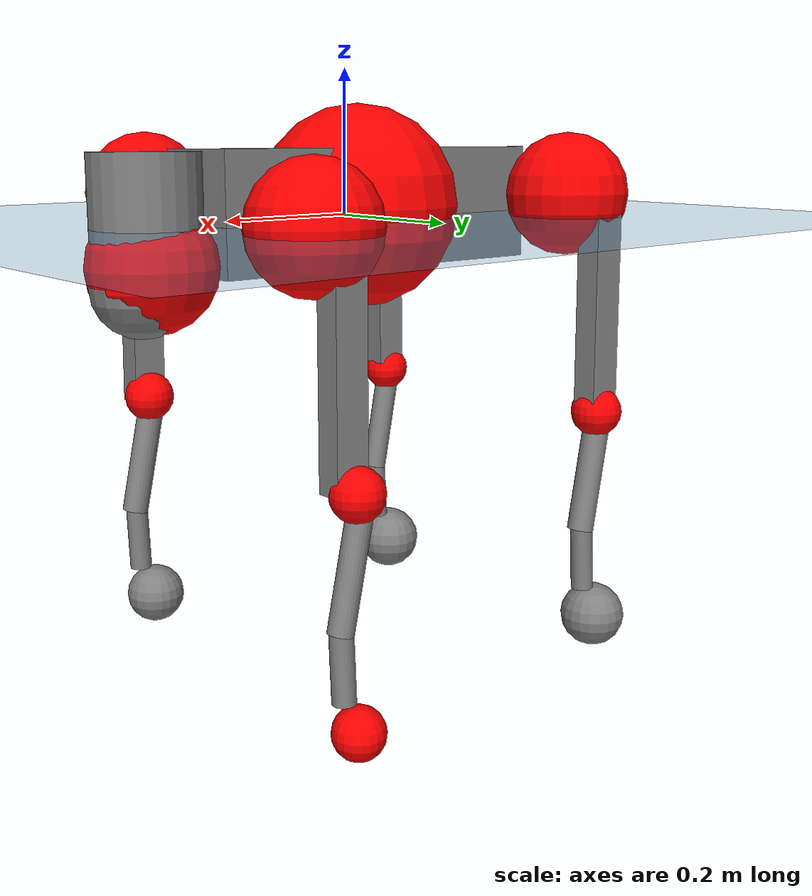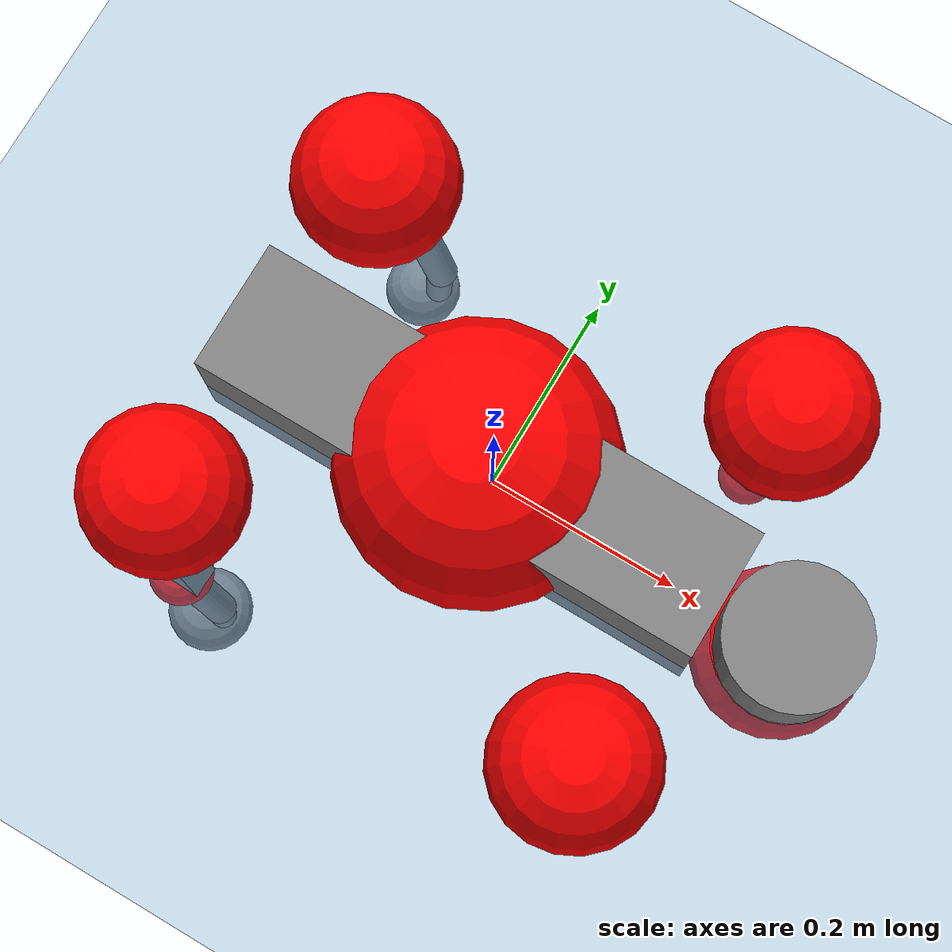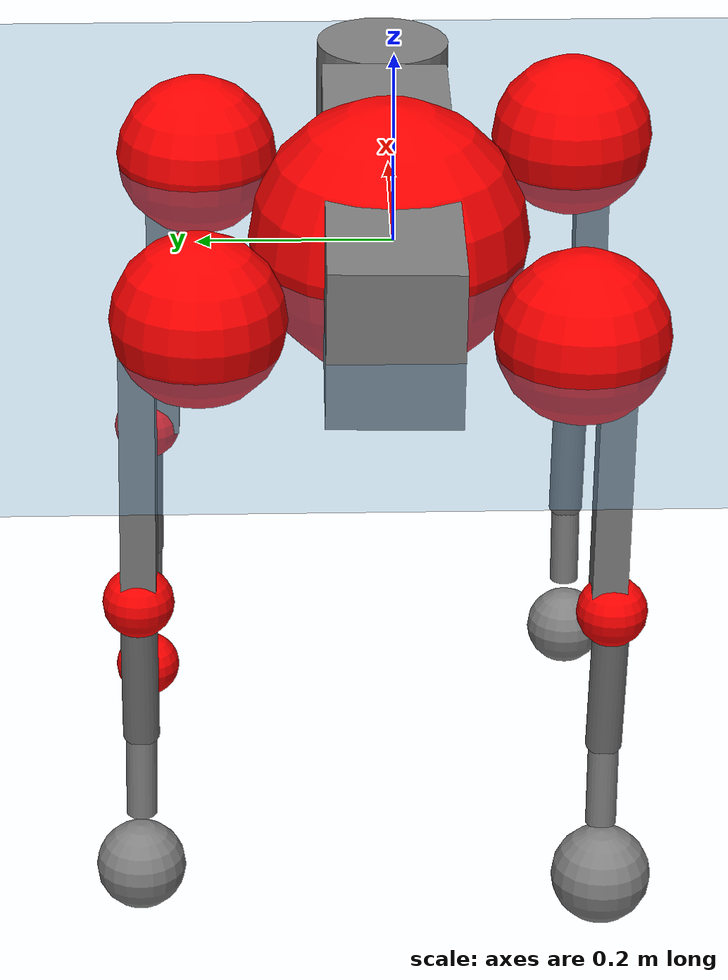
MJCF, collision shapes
<mujoco model="go2">
  <compiler angle="radian" assetdir="assets" balanceinertia="true" inertiafromgeom="false"/>

  <option timestep="0.005" density="1.2" viscosity="2e-05"/>

  <size nkey="1"/>

  <visual>
    <quality shadowsize="8192"/>
    <map shadowclip="0.5"/>
  </visual>

  <default>
    <default class="/">
      <geom contype="0" conaffinity="0" group="1" solref="-1000 -80"/>
      <site size="0.01 0.005 0.005" group="5"/>
      <general forcelimited="true" biastype="affine" gainprm="20" biasprm="0 -20 -0.5"/>
      <default class="go2">
        <joint armature="0.01" damping="0.01" frictionloss="0.2"/>
        <geom condim="1" margin="0.001"/>
        <default class="visual">
          <geom type="mesh" group="2"/>
        </default>
        <default class="collision">
          <geom group="3"/>
          <default class="foot">
            <geom size="0.022 0 0" condim="6" priority="1" friction="0.8 0.02 0.01" solimp="0.015 1 0.022"/>
          </default>
        </default>
        <default class="reward_collision_sphere">
          <geom group="5" rgba="1 0 0 1"/>
        </default>
      </default>
    </default>
  </default>

  <asset>
    <texture type="skybox" colorspace="auto" name="//unnamed_texture_0" builtin="gradient" rgb1="0.95 0.95 0.95" rgb2="0.95 0.95 0.95" width="100" height="600"/>
    <texture type="2d" colorspace="auto" name="texplane" builtin="checker" rgb1="0.345 0.575 0.748" rgb2="0.345 0.575 0.748" markrgb="1 1 1" width="512" height="512"/>
    <material name="MatPlane" class="/" texture="texplane" texuniform="true" texrepeat="2 2" specular="0.9"/>
    <material name="metal" class="/" rgba="0.9 0.95 0.95 1"/>
    <material name="black" class="/" rgba="0 0 0 1"/>
    <material name="white" class="/"/>
    <material name="gray" class="/" rgba="0.671705 0.692426 0.77427 1"/>
    <mesh name="base_0" class="/" file="base_0.obj"/>
    <mesh name="base_1" class="/" file="base_1.obj"/>
    <mesh name="base_2" class="/" file="base_2.obj"/>
    <mesh name="base_3" class="/" file="base_3.obj"/>
    <mesh name="base_4" class="/" file="base_4.obj"/>
    <mesh name="hip_0" class="/" file="hip_0.obj"/>
    <mesh name="hip_1" class="/" file="hip_1.obj"/>
    <mesh name="thigh_0" class="/" file="thigh_0.obj"/>
    <mesh name="thigh_1" class="/" file="thigh_1.obj"/>
    <mesh name="thigh_mirror_0" class="/" file="thigh_mirror_0.obj"/>
    <mesh name="thigh_mirror_1" class="/" file="thigh_mirror_1.obj"/>
    <mesh name="calf_0" class="/" file="calf_0.obj"/>
    <mesh name="calf_1" class="/" file="calf_1.obj"/>
    <mesh name="calf_mirror_0" class="/" file="calf_mirror_0.obj"/>
    <mesh name="calf_mirror_1" class="/" file="calf_mirror_1.obj"/>
    <mesh name="foot" class="/" file="foot.obj"/>
  </asset>

  <worldbody>
    <geom name="floor" class="/" size="100 100 0.125" type="plane" group="0" material="MatPlane"/>
    <light name="toplight_shadow" class="/" pos="0 0 5" dir="0.0990148 0.0990148 -0.990148" type="directional" ambient="0.04 0.04 0.04" diffuse="0.55 0.55 0.55" specular="0.12 0.12 0.12"/>
    <light name="toplight_fill" class="/" pos="0 0 5" dir="0.0990148 0.0990148 -0.990148" type="directional" castshadow="false" ambient="0.04 0.04 0.04" diffuse="0.3 0.3 0.3" specular="0.08 0.08 0.08"/>
    <body name="trunk" childclass="go2" pos="-0.0194292 0.00513848 0.0117209" quat="0.99996 0.00828057 -0.00312639 -0.00154999">
      <inertial pos="0.0440507 -0.0113998 -0.000862321" quat="0.0330668 0.718798 -0.0139743 0.694292" mass="21.5823" diaginertia="0.231495 0.988571 0.114552"/>
      <joint name="//unnamed_joint_0" type="free" armature="0" damping="0" frictionloss="0"/>
      <geom name="//unnamed_geom_1" class="visual" material="black" mesh="base_0"/>
      <geom name="//unnamed_geom_2" class="visual" material="black" mesh="base_1"/>
      <geom name="//unnamed_geom_3" class="visual" material="black" mesh="base_2"/>
      <geom name="//unnamed_geom_4" class="visual" material="white" mesh="base_3"/>
      <geom name="//unnamed_geom_5" class="visual" material="gray" mesh="base_4"/>
      <geom name="trunk_1" class="collision" size="0.268155 0.0666467 0.081259" type="box"/>
      <geom name="trunk_2" class="collision" size="0.0712799 0.0641519" pos="0.342044 0 0.014411" type="cylinder"/>
      <geom name="trunk_3" class="collision" size="0.0670031" pos="0.351645 0 -0.0864658"/>
      <geom name="//unnamed_geom_9" class="reward_collision_sphere" size="0.14256"/>
      <geom name="//unnamed_geom_10" class="reward_collision_sphere" size="0.0855358" pos="0.336043 0 -0.0648494"/>
      <site name="imu" pos="-0.00364267 -0.0632221 -0.0266397" size="0.014256"/>
      <camera name="track" pos="0 -3.27108 0" quat="0.707107 0.707107 0 0" mode="trackcom"/>
      <camera name="ego_camera" pos="0.374448 0 0.0648494" quat="-0.5 -0.5 0.5 0.5"/>
      <body name="FL_hip" pos="0.23263 0.0850867 -0.0109431" quat="0.999984 0.00460429 -0.00122844 -0.00320308">
        <inertial pos="-0.014464 0.018136 0.00633727" quat="0.513788 0.476059 0.509124 0.500182" mass="2.02681" diaginertia="0.0014976 0.00531267 0.00294291"/>
        <joint name="FL_hip_joint" pos="0 0 0" axis="0.9954 0.0068195 0.0955667" stiffness="0.0520747" range="-1.42584 1.16785" armature="0.0157849" damping="0" frictionloss="0.254481"/>
        <geom name="//unnamed_geom_11" class="visual" material="metal" mesh="hip_0"/>
        <geom name="//unnamed_geom_12" class="visual" material="gray" mesh="hip_1"/>
        <geom name="//unnamed_geom_13" class="collision" size="0.0655775 0.0285119" pos="0 0.130843 0" quat="0.707107 0.707107 0 0" type="cylinder"/>
        <geom name="//unnamed_geom_14" class="reward_collision_sphere" size="0.0855358" pos="0 0.114488 0"/>
        <body name="FL_thigh" pos="-0.0120592 0.150719 -0.0128238" quat="0.999965 -0.00177946 -0.000417641 0.00810566">
          <inertial pos="-0.0192239 -0.0226696 -0.0293259" quat="0.828517 0.0879954 -0.01866 0.552692" mass="4.20305" diaginertia="0.0149494 0.0758412 0.00487371"/>
          <joint name="FL_thigh_joint" pos="0 0 0" axis="-0.00236922 0.998778 0.0493693" stiffness="0.0985898" range="-1.79906 3.54167" armature="0.022475" damping="0" frictionloss="0.427894"/>
          <geom name="//unnamed_geom_15" class="visual" material="metal" mesh="thigh_0"/>
          <geom name="//unnamed_geom_16" class="visual" material="gray" mesh="thigh_1"/>
          <geom name="//unnamed_geom_17" class="collision" size="0.151826 0.0174636 0.0242352" pos="0 0 -0.153477" quat="0.707107 0 0.707107 0" type="box"/>
          <body name="FL_calf" pos="-0.00615754 0.017925 -0.30402" quat="0.999977 0.00200118 -0.00585739 0.00282338">
            <inertial pos="0.0237128 0.00177126 -0.217977" quat="0.740951 -0.0274202 -0.00385758 0.670988" mass="0.654957" diaginertia="0.00325324 0.0106642 0.000219696"/>
            <joint name="FL_calf_joint" pos="0 0 0" axis="-0.00618919 0.998736 0.0498824" range="-2.36686 -0.934304" armature="0.00612722" damping="0.0985443" frictionloss="0.108673"/>
            <geom name="//unnamed_geom_18" class="visual" material="gray" mesh="calf_0"/>
            <geom name="//unnamed_geom_19" class="visual" material="black" mesh="calf_1"/>
            <geom name="FL_calf0" class="collision" size="0.0171072 0.0855358" pos="0.00960122 0 -0.0864658" quat="0.994493 0 -0.104807 0" type="cylinder"/>
            <geom name="//unnamed_geom_21" class="collision" size="0.0156816 0.0463319" pos="0.0240031 0 -0.213282" quat="0.999688 0 0.0249974 0" type="cylinder"/>
            <geom name="//unnamed_geom_22" class="visual" pos="0 0 -0.306954" quat="1 0 0 0" material="black" mesh="foot"/>
            <geom name="FL_foot" class="foot" size="0.0272005" pos="-0.00240031 0 -0.306954"/>
            <geom name="//unnamed_geom_24" class="reward_collision_sphere" size="0.0356399"/>
            <geom name="//unnamed_geom_25" class="reward_collision_sphere" size="0.0356399" pos="-0.00240031 0 -0.306954"/>
            <site name="FL_foot" class="foot" pos="-0.00240031 0 -0.306954" size="0.014256"/>
          </body>
        </body>
      </body>
      <body name="FR_hip" pos="0.225712 -0.0851917 0.0180816" quat="0.99997 -0.00631283 -0.00384133 -0.00234156">
        <inertial pos="-0.0187823 0.0139433 0.00194174" quat="0.50727 0.494584 0.553685 0.437603" mass="1.95533" diaginertia="0.0030405 0.00813515 0.00406328"/>
        <joint name="FR_hip_joint" pos="0 0 0" axis="0.998048 -0.0604481 0.0157198" stiffness="0.0425351" range="-1.24498 1.01241" armature="0.00814517" damping="0" frictionloss="0.52145"/>
        <geom name="//unnamed_geom_26" class="visual" pos="0 1.69392e-09 7.26559e-08" quat="4.63268e-05 1 0 0" material="metal" mesh="hip_0"/>
        <geom name="//unnamed_geom_27" class="visual" pos="0 2.74605e-09 -1.79706e-07" quat="4.63268e-05 1 0 0" material="gray" mesh="hip_1"/>
        <geom name="//unnamed_geom_28" class="collision" size="0.0655775 0.0285119" pos="0 -0.130843 0" quat="0.707107 0.707107 0 0" type="cylinder"/>
        <geom name="//unnamed_geom_29" class="reward_collision_sphere" size="0.0855358" pos="0 -0.114488 0"/>
        <body name="FR_thigh" pos="-0.00222087 -0.136978 0.000620907" quat="0.999998 -0.00203035 0.000344538 0.000258837">
          <inertial pos="-0.0172665 0.0518349 -0.041461" quat="0.554716 -0.0586805 0.141595 0.8178" mass="3.18215" diaginertia="0.0182033 0.0880111 0.00499194"/>
          <joint name="FR_thigh_joint" pos="0 0 0" axis="-0.0133977 -0.99991 -0.000590688" stiffness="0.0650647" range="-3.3649 1.25168" armature="0.0150759" damping="0.0459743" frictionloss="0.123861"/>
          <geom name="//unnamed_geom_30" class="visual" material="metal" mesh="thigh_mirror_0"/>
          <geom name="//unnamed_geom_31" class="visual" material="gray" mesh="thigh_mirror_1"/>
          <geom name="//unnamed_geom_32" class="collision" size="0.151826 0.0174636 0.0242352" pos="0 0 -0.153477" quat="0.707107 0 0.707107 0" type="box"/>
          <body name="FR_calf" pos="0.000846645 0.0158616 -0.297243" quat="1 0.000383917 0.000159387 1.78369e-05">
            <inertial pos="0.0103439 -0.00393098 -0.207357" quat="0.744811 0.0500095 -0.0256153 0.664905" mass="0.72677" diaginertia="0.00372582 0.0169194 0.000385327"/>
            <joint name="FR_calf_joint" pos="0 0 0" axis="0.0617488 -0.995752 -0.0682963" stiffness="0.0841144" range="0.742228 2.42968" armature="0.0216188" damping="0" frictionloss="0.438572"/>
            <geom name="//unnamed_geom_33" class="visual" material="gray" mesh="calf_mirror_0"/>
            <geom name="//unnamed_geom_34" class="visual" material="black" mesh="calf_mirror_1"/>
            <geom name="FR_calf0" class="collision" size="0.0185328 0.0855358" pos="0.0120015 0 -0.0864658" quat="0.995004 0 -0.0998334 0" type="cylinder"/>
            <geom name="//unnamed_geom_36" class="collision" size="0.0156816 0.0463319" pos="0.0240031 0 -0.213282" quat="0.999688 0 0.0249974 0" type="cylinder"/>
            <geom name="//unnamed_geom_37" class="visual" pos="0 0 -0.306954" quat="1 0 0 0" material="black" mesh="foot"/>
            <geom name="FR_foot" class="foot" size="0.0421829" pos="-0.00240031 0 -0.306954"/>
            <geom name="//unnamed_geom_39" class="reward_collision_sphere" size="0.0356399"/>
            <geom name="//unnamed_geom_40" class="reward_collision_sphere" size="0.0356399" pos="-0.00240031 0 -0.306954"/>
            <site name="FR_foot" class="foot" pos="-0.00240031 0 -0.306954" size="0.014256"/>
          </body>
        </body>
      </body>
      <body name="RL_hip" pos="-0.228883 0.0731187 0.0151275" quat="0.999998 0.0014076 0.00083839 -0.000949659">
        <inertial pos="-0.00393961 -0.0153048 0.0148974" quat="0.571545 0.441776 0.454959 0.520752" mass="1.36708" diaginertia="0.00184672 0.00659696 0.00209671"/>
        <joint name="RL_hip_joint" pos="0 0 0" axis="-0.999837 -0.00944493 0.0154129" range="-0.917243 1.31164" armature="0.0249323" damping="0.0477819" frictionloss="0.038548"/>
        <geom name="//unnamed_geom_41" class="visual" pos="2.09901e-09 0 4.11454e-07" quat="4.63268e-05 0 1 0" material="metal" mesh="hip_0"/>
        <geom name="//unnamed_geom_42" class="visual" pos="3.40274e-09 0 3.64901e-07" quat="4.63268e-05 0 1 0" material="gray" mesh="hip_1"/>
        <geom name="//unnamed_geom_43" class="collision" size="0.0655775 0.0285119" pos="0 0.130843 0" quat="0.707107 0.707107 0 0" type="cylinder"/>
        <geom name="//unnamed_geom_44" class="reward_collision_sphere" size="0.0855358" pos="0 0.114488 0"/>
        <body name="RL_thigh" pos="-0.00353415 0.173105 -0.0172514" quat="0.999995 0.000719461 -0.000804688 -0.00299704">
          <inertial pos="-0.00577936 -0.0345672 -0.0542373" quat="0.835064 0.125007 -0.0444671 0.533913" mass="2.27887" diaginertia="0.0124329 0.0554119 0.00400739"/>
          <joint name="RL_thigh_joint" pos="0 0 0" axis="0.00415884 0.99777 -0.0666184" range="-0.622117 4.43528" armature="0.00410412" damping="0.0811377" frictionloss="0.269947"/>
          <geom name="//unnamed_geom_45" class="visual" material="metal" mesh="thigh_0"/>
          <geom name="//unnamed_geom_46" class="visual" material="gray" mesh="thigh_1"/>
          <geom name="//unnamed_geom_47" class="collision" size="0.151826 0.0174636 0.0242352" pos="0 0 -0.153477" quat="0.707107 0 0.707107 0" type="box"/>
          <body name="RL_calf" pos="-0.00280013 0.000780593 -0.288916" quat="0.999993 -0.000661352 0.00350608 0.00149069">
            <inertial pos="0.0176091 -0.0200096 -0.208908" quat="0.729053 0.0253106 0.0456021 0.682468" mass="0.618127" diaginertia="0.00377038 0.0141232 0.000359172"/>
            <joint name="RL_calf_joint" pos="0 0 0" axis="0.0096095 0.999367 -0.0342445" stiffness="0.0975743" range="-2.69108 -1.06571" armature="0.00576928" damping="0.07283" frictionloss="0.0185585"/>
            <geom name="//unnamed_geom_48" class="visual" material="gray" mesh="calf_0"/>
            <geom name="//unnamed_geom_49" class="visual" material="black" mesh="calf_1"/>
            <geom name="RL_calf0" class="collision" size="0.0185328 0.0855358" pos="0.0120015 0 -0.0864658" quat="0.995004 0 -0.0998334 0" type="cylinder"/>
            <geom name="//unnamed_geom_51" class="collision" size="0.0156816 0.0463319" pos="0.0240031 0 -0.213282" quat="0.999688 0 0.0249974 0" type="cylinder"/>
            <geom name="//unnamed_geom_52" class="visual" pos="0 0 -0.306954" quat="1 0 0 0" material="black" mesh="foot"/>
            <geom name="RL_foot" class="foot" size="0.0455724" pos="-0.00240031 0 -0.306954"/>
            <geom name="//unnamed_geom_54" class="reward_collision_sphere" size="0.0356399"/>
            <geom name="//unnamed_geom_55" class="reward_collision_sphere" size="0.0356399" pos="-0.00240031 0 -0.306954"/>
            <site name="RL_foot" class="foot" pos="-0.00240031 0 -0.306954" size="0.014256"/>
          </body>
        </body>
      </body>
      <body name="RR_hip" pos="-0.24207 -0.0638111 0.00705885" quat="0.999957 -0.000706353 0.00693092 -0.0060497">
        <inertial pos="-0.0123052 -0.0182573 0.0185346" quat="0.495957 0.437001 0.529306 0.531875" mass="1.87813" diaginertia="0.00223703 0.00713999 0.00310143"/>
        <joint name="RR_hip_joint" pos="0 0 0" axis="-0.995416 0.0869139 0.0399086" range="-1.24927 0.911082" armature="0.0232389" damping="0.0435766" frictionloss="0.178938"/>
        <geom name="//unnamed_geom_56" class="visual" pos="-2.08393e-09 1.69392e-09 3.38798e-07" quat="2.14617e-09 4.63268e-05 4.63268e-05 -1" material="metal" mesh="hip_0"/>
        <geom name="//unnamed_geom_57" class="visual" pos="-3.44003e-09 2.74605e-09 5.44607e-07" quat="2.14617e-09 4.63268e-05 4.63268e-05 -1" material="gray" mesh="hip_1"/>
        <geom name="//unnamed_geom_58" class="collision" size="0.0655775 0.0285119" pos="0 -0.130843 0" quat="0.707107 0.707107 0 0" type="cylinder"/>
        <geom name="//unnamed_geom_59" class="reward_collision_sphere" size="0.0855358" pos="0 -0.114488 0"/>
        <body name="RR_thigh" pos="0.00868344 -0.151009 0.0188624" quat="1 -0.000290459 -0.000577064 0.000222243">
          <inertial pos="0.00182186 0.0336014 -0.0461743" quat="0.541479 -0.02929 0.0795269 0.836432" mass="4.04302" diaginertia="0.0161579 0.0565562 0.00531102"/>
          <joint name="RR_thigh_joint" pos="0 0 0" axis="-0.0349715 -0.999282 0.0145484" range="-4.57196 0.188825" armature="0.0182662" damping="0" frictionloss="0.178046"/>
          <geom name="//unnamed_geom_60" class="visual" material="metal" mesh="thigh_mirror_0"/>
          <geom name="//unnamed_geom_61" class="visual" material="gray" mesh="thigh_mirror_1"/>
          <geom name="//unnamed_geom_62" class="collision" size="0.151826 0.0174636 0.0242352" pos="0 0 -0.153477" quat="0.707107 0 0.707107 0" type="box"/>
          <body name="RR_calf" pos="-0.00669274 -0.00406898 -0.318837" quat="0.999997 -0.00214604 0.000903624 -0.00106859">
            <inertial pos="0.0224685 -0.00521407 -0.200184" quat="0.688242 -0.044964 -0.0426865 0.722827" mass="0.764359" diaginertia="0.00331339 0.0167293 0.000270735"/>
            <joint name="RR_calf_joint" pos="0 0 0" axis="-0.00938951 -0.99616 0.0870511" stiffness="0.0149906" range="1.03995 2.78594" armature="0.0203127" damping="0" frictionloss="0.410421"/>
            <geom name="//unnamed_geom_63" class="visual" material="gray" mesh="calf_mirror_0"/>
            <geom name="//unnamed_geom_64" class="visual" material="black" mesh="calf_mirror_1"/>
            <geom name="RR_calf0" class="collision" size="0.0185328 0.0855358" pos="0.0120015 0 -0.0864658" quat="0.995004 0 -0.0998334 0" type="cylinder"/>
            <geom name="//unnamed_geom_66" class="collision" size="0.0156816 0.0463319" pos="0.0240031 0 -0.213282" quat="0.999688 0 0.0249974 0" type="cylinder"/>
            <geom name="//unnamed_geom_67" class="visual" pos="0 0 -0.306954" quat="1 0 0 0" material="black" mesh="foot"/>
            <geom name="RR_foot" class="foot" size="0.0509166" pos="-0.00240031 0 -0.306954"/>
            <geom name="//unnamed_geom_69" class="reward_collision_sphere" size="0.0356399"/>
            <geom name="//unnamed_geom_70" class="reward_collision_sphere" size="0.0356399" pos="-0.00240031 0 -0.306954"/>
            <site name="RR_foot" class="foot" pos="-0.00240031 0 -0.306954" size="0.014256"/>
          </body>
        </body>
      </body>
    </body>
  </worldbody>

  <contact>
    <pair class="/" geom1="floor" geom2="FL_foot" name="//unnamed_contact_0"/>
    <pair class="/" geom1="floor" geom2="FR_foot" name="//unnamed_contact_1"/>
    <pair class="/" geom1="floor" geom2="RL_foot" name="//unnamed_contact_2"/>
    <pair class="/" geom1="floor" geom2="RR_foot" name="//unnamed_contact_3"/>
  </contact>

  <actuator>
    <general name="FL_hip" class="/" joint="FL_hip_joint" forcerange="-35.7326 35.7326" gainprm="19.2828" biasprm="0 -19.2828 -0.969745"/>
    <general name="FL_thigh" class="/" joint="FL_thigh_joint" forcerange="-49.5779 49.5779" gainprm="19.2828" biasprm="0 -19.2828 -0.969745"/>
    <general name="FL_calf" class="/" joint="FL_calf_joint" forcerange="-80.1167 80.1167" gainprm="19.2828" biasprm="0 -19.2828 -0.969745"/>
    <general name="FR_hip" class="/" joint="FR_hip_joint" forcerange="-39.3995 39.3995" gainprm="19.2828" biasprm="0 -19.2828 -0.969745"/>
    <general name="FR_thigh" class="/" joint="FR_thigh_joint" forcerange="-18.1393 18.1393" gainprm="19.2828" biasprm="0 -19.2828 -0.969745"/>
    <general name="FR_calf" class="/" joint="FR_calf_joint" forcerange="-71.9921 71.9921" gainprm="19.2828" biasprm="0 -19.2828 -0.969745"/>
    <general name="RL_hip" class="/" joint="RL_hip_joint" forcerange="-10.458 10.458" gainprm="19.2828" biasprm="0 -19.2828 -0.969745"/>
    <general name="RL_thigh" class="/" joint="RL_thigh_joint" forcerange="-49.075 49.075" gainprm="19.2828" biasprm="0 -19.2828 -0.969745"/>
    <general name="RL_calf" class="/" joint="RL_calf_joint" forcerange="-109.46 109.46" gainprm="19.2828" biasprm="0 -19.2828 -0.969745"/>
    <general name="RR_hip" class="/" joint="RR_hip_joint" forcerange="-51.7278 51.7278" gainprm="19.2828" biasprm="0 -19.2828 -0.969745"/>
    <general name="RR_thigh" class="/" joint="RR_thigh_joint" forcerange="-11.0166 11.0166" gainprm="19.2828" biasprm="0 -19.2828 -0.969745"/>
    <general name="RR_calf" class="/" joint="RR_calf_joint" forcerange="-49.0911 49.0911" gainprm="19.2828" biasprm="0 -19.2828 -0.969745"/>
  </actuator>

  <sensor>
    <gyro site="imu" name="imu_angular_velocity"/>
    <velocimeter site="imu" name="imu_linear_velocity"/>
    <framelinvel objtype="site" objname="FL_foot" name="FL_foot_global_linear_velocity"/>
    <framelinvel objtype="site" objname="FR_foot" name="FR_foot_global_linear_velocity"/>
    <framelinvel objtype="site" objname="RL_foot" name="RL_foot_global_linear_velocity"/>
    <framelinvel objtype="site" objname="RR_foot" name="RR_foot_global_linear_velocity"/>
  </sensor>

  <keyframe>
    <key name="home" qpos="0 0 0.325 1 0 0 0 0.1 0.8 -1.5 -0.1 -0.8 1.5 -0.1 0.8 -1.5 0.1 -0.8 1.5"/>
  </keyframe>
</mujoco>
